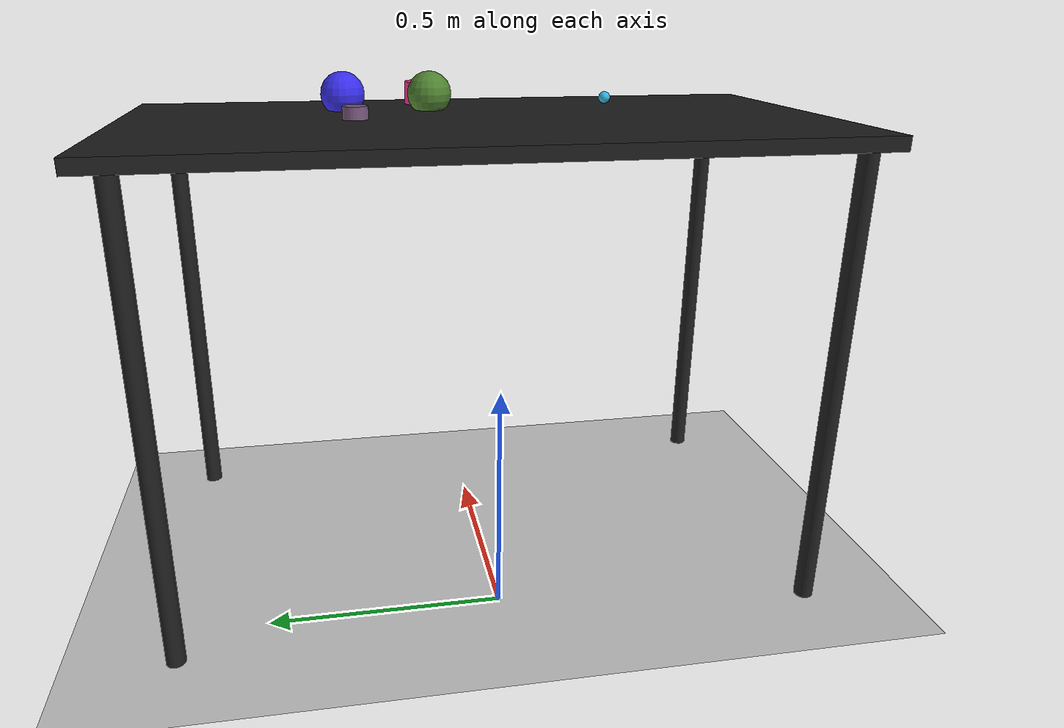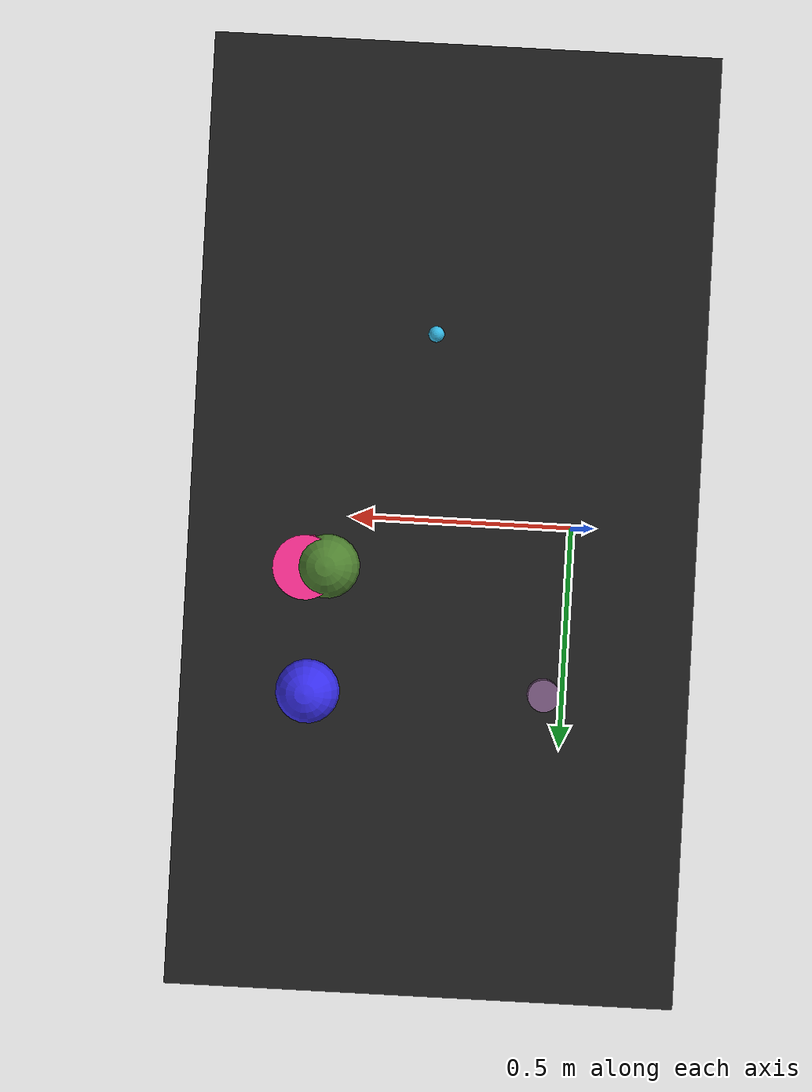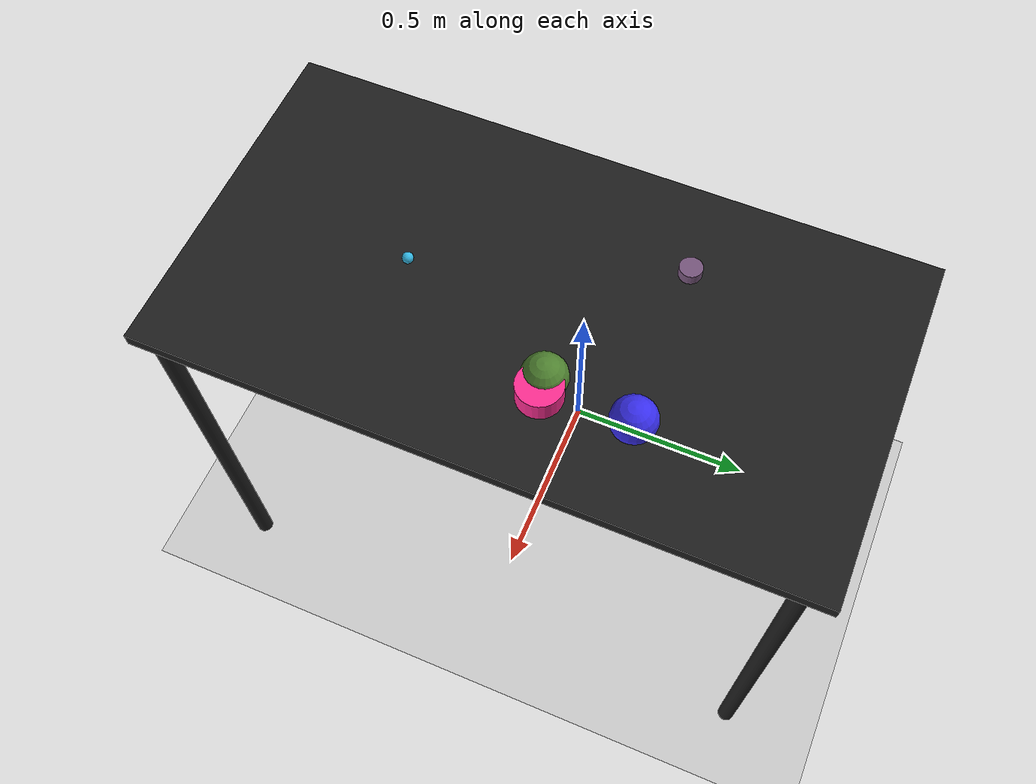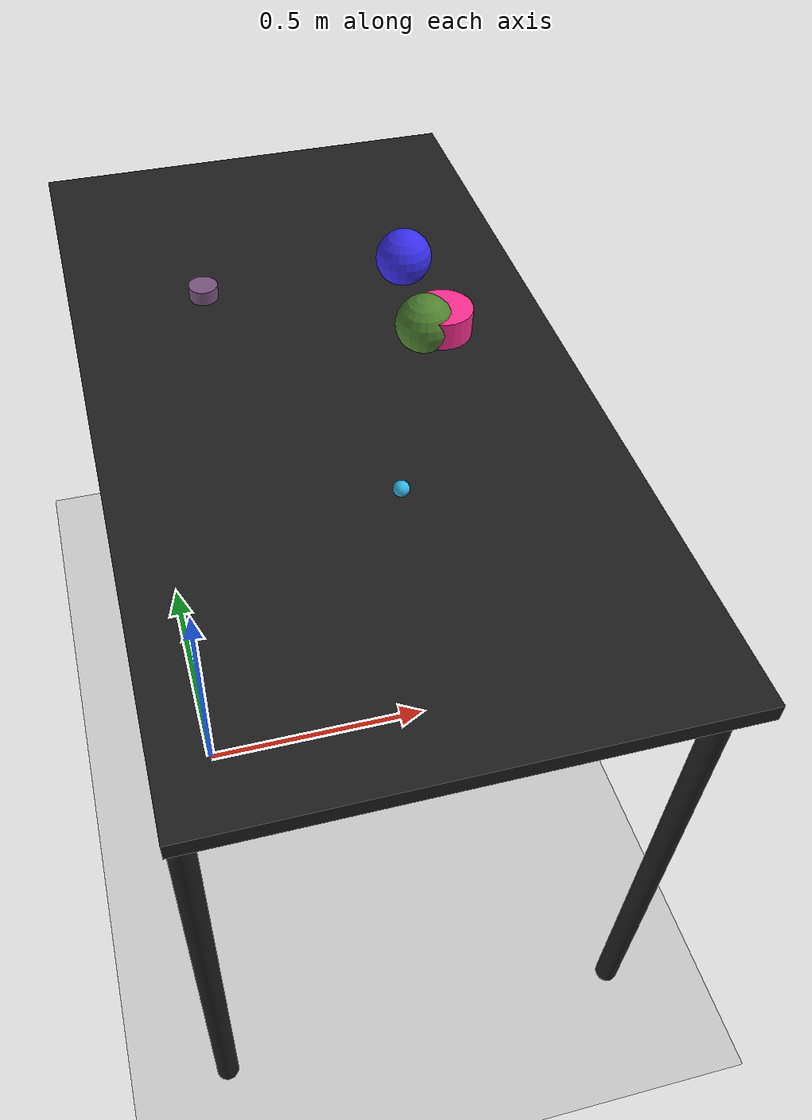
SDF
<?xml version="1.0" ?>
<sdf version="1.6">
  <world name="arm_world">
    <plugin filename="gz-sim-physics-system" name="gz::sim::systems::Physics">
      <engine>
        <filename>libgz-physics-bullet-featherstone-plugin.so</filename>
      </engine>
    </plugin>
    <plugin filename="gz-sim-user-commands-system" name="gz::sim::systems::UserCommands"/>
    <plugin filename="gz-sim-scene-broadcaster-system" name="gz::sim::systems::SceneBroadcaster"/>
    <plugin filename="gz-sim-sensors-system" name="gz::sim::systems::Sensors">
      <render_engine>ogre2</render_engine>
    </plugin>
    <gravity>0.0 0.0 -9.8</gravity>
    <scene>
      <shadows>false</shadows>
    </scene>
    <gui>
      <camera name="user_camera">
        <pose>0.75 -0.75 1.4 0 0.29 2.21</pose>
      </camera>
    </gui>
    <include>
      <uri>https://fuel.gazebosim.org/1.0/OpenRobotics/models/Sun</uri>
    </include>
    <model name="table">
      <static>true</static>
      <include>
        <uri>model://table</uri>
      </include>
      <pose>0.29 0 0 0 0 1.5708</pose>
    </model>
    <model name="ground_plane">
      <static>true</static>
      <link name="link">
        <collision name="collision">
          <geometry>
            <plane>
              <normal>0 0 1</normal>
            </plane>
          </geometry>
          <surface>
            <friction>
              <ode>
                <mu>1.0</mu>
                <mu2>1.0</mu2>
              </ode>
            </friction>
          </surface>
        </collision>
        <visual name="visual">
          <geometry>
            <plane>
              <normal>0 0 1</normal>
              <size>100 100</size>
            </plane>
          </geometry>
          <material>
            <ambient>0.8 0.8 0.8 1</ambient>
            <diffuse>0.8 0.8 0.8 1</diffuse>
            <specular>0.8 0.8 0.8 1</specular>
          </material>
        </visual>
      </link>
    </model>
    <model name="sphere_s_0">
      <pose>0.316 -0.287 1.05 0 0 0.15</pose>
      <link name="sphere_s_0_link">
        <collision name="sphere_s_0_collision">
          <geometry>
            <sphere>
              <radius>0.0125</radius>
            </sphere>
          </geometry>
        </collision>
        <visual name="sphere_s_0_visual">
          <geometry>
            <sphere>
              <radius>0.0125</radius>
            </sphere>
          </geometry>
          <material>
            <ambient>0.2 0.72 0.89 1</ambient>
            <diffuse>0.2 0.72 0.89 1</diffuse>
          </material>
        </visual>
        <velocity_decay>
          <linear>1</linear>
          <angular>1</angular>
        </velocity_decay>
      </link>
    </model>
    <model name="sphere_l_1">
      <pose>0.486 0.276 1.05 0 0 1.08</pose>
      <link name="sphere_l_1_link">
        <collision name="sphere_l_1_collision">
          <geometry>
            <sphere>
              <radius>0.05</radius>
            </sphere>
          </geometry>
        </collision>
        <visual name="sphere_l_1_visual">
          <geometry>
            <sphere>
              <radius>0.05</radius>
            </sphere>
          </geometry>
          <material>
            <ambient>0.22 0.18 0.93 1</ambient>
            <diffuse>0.22 0.18 0.93 1</diffuse>
          </material>
        </visual>
        <velocity_decay>
          <linear>1</linear>
          <angular>1</angular>
        </velocity_decay>
      </link>
    </model>
    <model name="cylinder_m_2">
      <pose>0.121 0.263 1.05 0 0 2.47</pose>
      <link name="cylinder_m_2_link">
        <collision name="cylinder_m_2_collision">
          <geometry>
            <cylinder>
              <radius>0.025</radius>
              <length>0.025</length>
            </cylinder>
          </geometry>
        </collision>
        <visual name="cylinder_m_2_visual">
          <geometry>
            <cylinder>
              <radius>0.025</radius>
              <length>0.025</length>
            </cylinder>
          </geometry>
          <material>
            <ambient>0.47 0.34 0.49 1</ambient>
            <diffuse>0.47 0.34 0.49 1</diffuse>
          </material>
        </visual>
        <velocity_decay>
          <linear>1</linear>
          <angular>1</angular>
        </velocity_decay>
      </link>
    </model>
    <model name="cylinder_l_3">
      <pose>0.498 0.084 1.05 0 0 5.07</pose>
      <link name="cylinder_l_3_link">
        <collision name="cylinder_l_3_collision">
          <geometry>
            <cylinder>
              <radius>0.05</radius>
              <length>0.05</length>
            </cylinder>
          </geometry>
        </collision>
        <visual name="cylinder_l_3_visual">
          <geometry>
            <cylinder>
              <radius>0.05</radius>
              <length>0.05</length>
            </cylinder>
          </geometry>
          <material>
            <ambient>1.0 0.18 0.58 1</ambient>
            <diffuse>1.0 0.18 0.58 1</diffuse>
          </material>
        </visual>
        <velocity_decay>
          <linear>1</linear>
          <angular>1</angular>
        </velocity_decay>
      </link>
    </model>
    <model name="sphere_l_4">
      <pose>0.465 0.081 1.05 0 0 4.22</pose>
      <link name="sphere_l_4_link">
        <collision name="sphere_l_4_collision">
          <geometry>
            <sphere>
              <radius>0.05</radius>
            </sphere>
          </geometry>
        </collision>
        <visual name="sphere_l_4_visual">
          <geometry>
            <sphere>
              <radius>0.05</radius>
            </sphere>
          </geometry>
          <material>
            <ambient>0.31 0.51 0.19 1</ambient>
            <diffuse>0.31 0.51 0.19 1</diffuse>
          </material>
        </visual>
        <velocity_decay>
          <linear>1</linear>
          <angular>1</angular>
        </velocity_decay>
      </link>
    </model>
  </world>
</sdf>

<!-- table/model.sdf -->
<sdf version="1.5">
  <model name="table">
    <static>true</static>
    <link name="link">
      <collision name="surface">
        <pose>0 0 1.0 0 0 0</pose>
        <geometry>
          <box>
            <size>1.5 0.8 0.03</size>
          </box>
        </geometry>
        <surface>
          <friction>
            <ode>
              <mu>0.6</mu>
              <mu2>0.6</mu2>
            </ode>
          </friction>
        </surface>
      </collision>
      <visual name="surface">
        <pose>0 0 1.0 0 0 0</pose>
        <geometry>
          <box>
            <size>1.5 0.8 0.03</size>
          </box>
        </geometry>
        <material>
          <script>
            <uri>file://media/materials/scripts/gazebo.material</uri>
            <name>Gazebo/Black</name>
          </script>
        </material>
      </visual>
      <collision name="front_left_leg">
        <pose>0.68 0.38 0.5 0 0 0</pose>
        <geometry>
          <cylinder>
            <radius>0.02</radius>
            <length>1.0</length>
          </cylinder>
        </geometry>
      </collision>
      <visual name="front_left_leg">
        <pose>0.68 0.38 0.5 0 0 0</pose>
        <geometry>
          <cylinder>
            <radius>0.02</radius>
            <length>1.0</length>
          </cylinder>
        </geometry>
        <material>
          <script>
            <uri>file://media/materials/scripts/gazebo.material</uri>
            <name>Gazebo/Black</name>
          </script>
        </material>
      </visual>
      <collision name="front_right_leg">
        <pose>0.68 -0.38 0.5 0 0 0</pose>
        <geometry>
          <cylinder>
            <radius>0.02</radius>
            <length>1.0</length>
          </cylinder>
        </geometry>
      </collision>
      <visual name="front_right_leg">
        <pose>0.68 -0.38 0.5 0 0 0</pose>
        <geometry>
          <cylinder>
            <radius>0.02</radius>
            <length>1.0</length>
          </cylinder>
        </geometry>
        <material>
          <script>
            <uri>file://media/materials/scripts/gazebo.material</uri>
            <name>Gazebo/Black</name>
          </script>
        </material>
      </visual>
      <collision name="back_right_leg">
        <pose>-0.68 -0.38 0.5 0 0 0</pose>
        <geometry>
          <cylinder>
            <radius>0.02</radius>
            <length>1.0</length>
          </cylinder>
        </geometry>
      </collision>
      <visual name="back_right_leg">
        <pose>-0.68 -0.38 0.5 0 0 0</pose>
        <geometry>
          <cylinder>
            <radius>0.02</radius>
            <length>1.0</length>
          </cylinder>
        </geometry>
        <material>
          <script>
            <uri>file://media/materials/scripts/gazebo.material</uri>
            <name>Gazebo/Black</name>
          </script>
        </material>
      </visual>
      <collision name="back_left_leg">
        <pose>-0.68 0.38 0.5 0 0 0</pose>
        <geometry>
          <cylinder>
            <radius>0.02</radius>
            <length>1.0</length>
          </cylinder>
        </geometry>
      </collision>
      <visual name="back_left_leg">
        <pose>-0.68 0.38 0.5 0 0 0</pose>
        <geometry>
          <cylinder>
            <radius>0.02</radius>
            <length>1.0</length>
          </cylinder>
        </geometry>
        <material>
          <script>
            <uri>file://media/materials/scripts/gazebo.material</uri>
            <name>Gazebo/Black</name>
          </script>
        </material>
      </visual>
    </link>
  </model>
</sdf>
